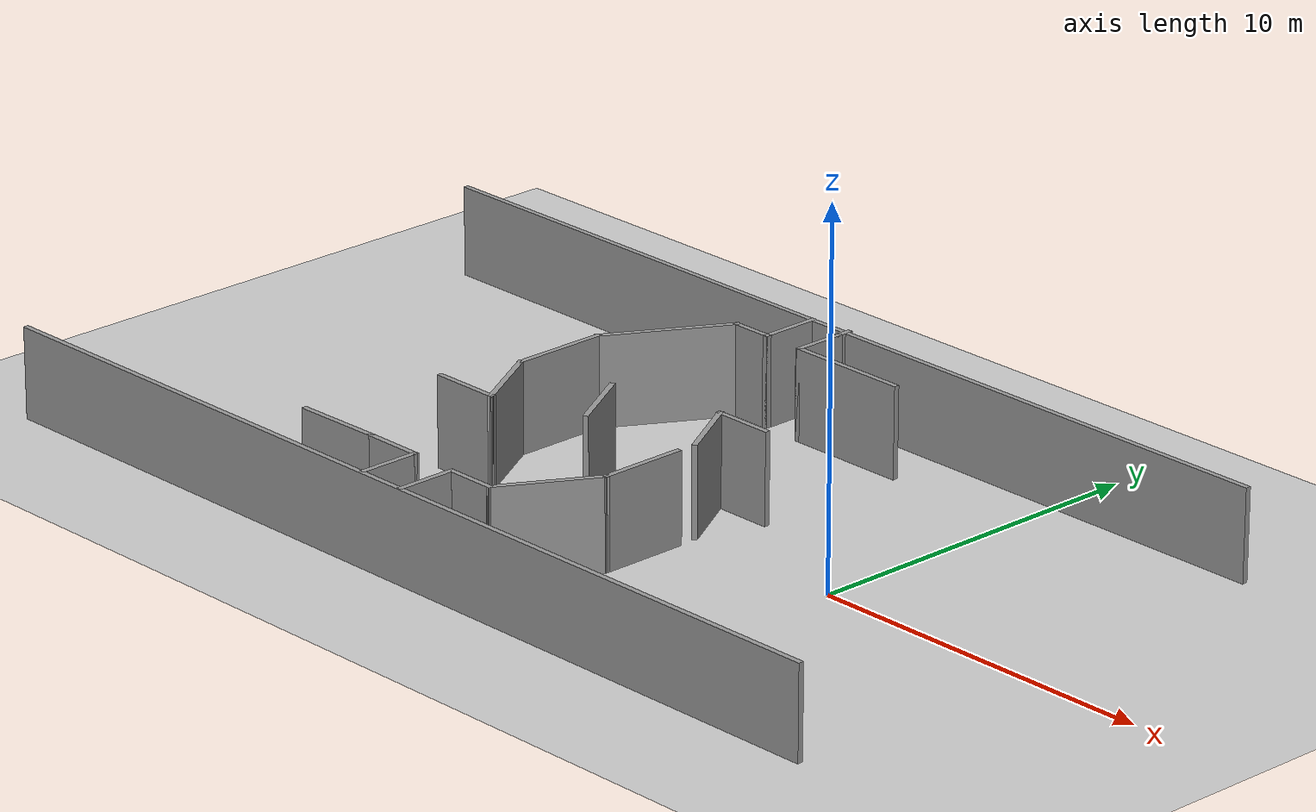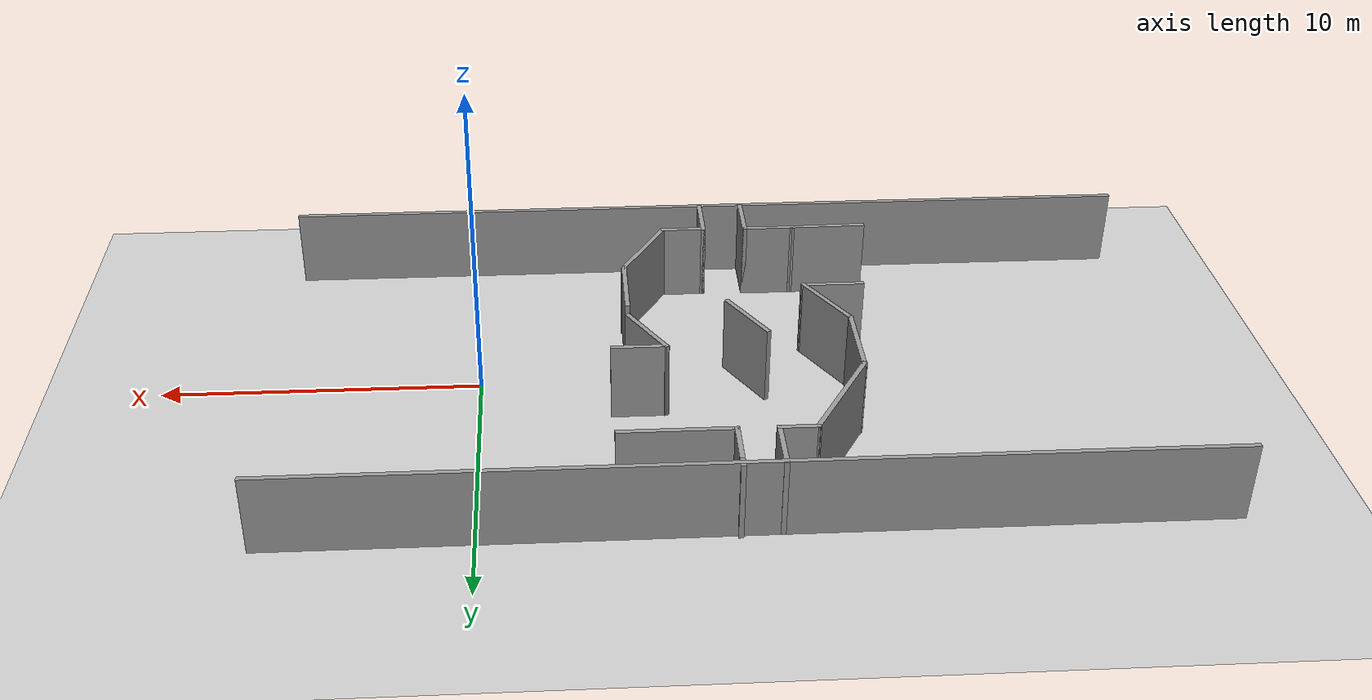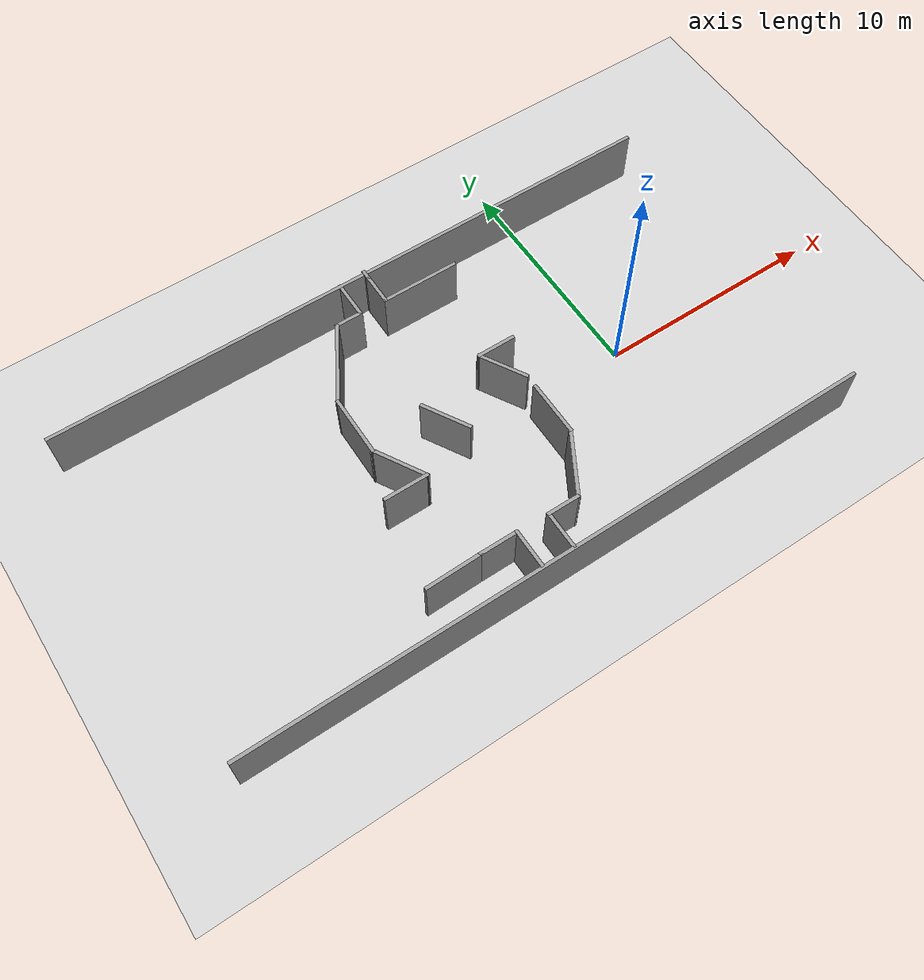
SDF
<sdf version="1.7">
 <world name="default">
  <model name="ground_plane">
   <static>1</static>
   <link name="link">
    <collision name="collision">
     <geometry><plane><normal>0 0 1</normal><size>100 100</size></plane></geometry>
     <surface>
      <contact><collide_bitmask>65535</collide_bitmask></contact>
      <friction><ode><mu>100</mu><mu2>50</mu2></ode></friction>
     </surface>
    </collision>
    <visual name="visual">
     <cast_shadows>0</cast_shadows>
     <geometry><plane><normal>0 0 1</normal><size>100 100</size></plane></geometry>
     <material>
      <script><uri>file://media/materials/scripts/gazebo.material</uri><name>Gazebo/Grey</name></script>
     </material>
    </visual>
   </link>
  </model>
  <model name="cubot">
   <link name="Wall_122">
    <pose>0 7.37532 0 0 -0 0</pose>
    <visual name="Wall_122_Visual">
     <pose>0 0 1.25 0 -0 0</pose>
     <geometry><box><size>28 0.15 2.5</size></box></geometry>
     <material>
      <script><uri>file://media/materials/scripts/gazebo.material</uri><name>Gazebo/Grey</name></script>
      <ambient>1 1 1 1</ambient>
      <shader type="pixel"/>
     </material>
     <meta><layer>0</layer></meta>
    </visual>
    <collision name="Wall_122_Collision">
     <pose>0 0 1.25 0 -0 0</pose>
     <geometry><box><size>28 0.15 2.5</size></box></geometry>
     <surface>
      <friction>
       <ode><mu>1</mu><mu2>1</mu2><fdir1>0 0 0</fdir1><slip1>0</slip1><slip2>0</slip2></ode>
       <torsional>
        <coefficient>1</coefficient>
        <patch_radius>0</patch_radius>
        <surface_radius>0</surface_radius>
        <use_patch_radius>1</use_patch_radius>
        <ode><slip>0</slip></ode>
       </torsional>
      </friction>
      <bounce><restitution_coefficient>0</restitution_coefficient><threshold>1e+06</threshold></bounce>
      <contact>
       <collide_without_contact>0</collide_without_contact>
       <collide_without_contact_bitmask>1</collide_without_contact_bitmask>
       <collide_bitmask>1</collide_bitmask>
       <ode>
        <soft_cfm>0</soft_cfm>
        <soft_erp>0.2</soft_erp>
        <kp>1e+13</kp>
        <kd>1</kd>
        <max_vel>0.01</max_vel>
        <min_depth>0</min_depth>
       </ode>
       <bullet>
        <split_impulse>1</split_impulse>
        <split_impulse_penetration_threshold>-0.01</split_impulse_penetration_threshold>
        <soft_cfm>0</soft_cfm>
        <soft_erp>0.2</soft_erp>
        <kp>1e+13</kp>
        <kd>1</kd>
       </bullet>
      </contact>
     </surface>
    </collision>
   </link>
   <link name="Wall_124">
    <pose>0 -7.47468 0 0 -0 3.14159</pose>
    <visual name="Wall_124_Visual">
     <pose>0 0 1.25 0 -0 0</pose>
     <geometry><box><size>28 0.15 2.5</size></box></geometry>
     <material>
      <script><uri>file://media/materials/scripts/gazebo.material</uri><name>Gazebo/Grey</name></script>
      <ambient>1 1 1 1</ambient>
      <shader type="pixel"/>
     </material>
     <meta><layer>0</layer></meta>
    </visual>
    <collision name="Wall_124_Collision">
     <pose>0 0 1.25 0 -0 0</pose>
     <geometry><box><size>28 0.15 2.5</size></box></geometry>
     <surface>
      <friction>
       <ode><mu>1</mu><mu2>1</mu2><fdir1>0 0 0</fdir1><slip1>0</slip1><slip2>0</slip2></ode>
       <torsional>
        <coefficient>1</coefficient>
        <patch_radius>0</patch_radius>
        <surface_radius>0</surface_radius>
        <use_patch_radius>1</use_patch_radius>
        <ode><slip>0</slip></ode>
       </torsional>
      </friction>
      <bounce><restitution_coefficient>0</restitution_coefficient><threshold>1e+06</threshold></bounce>
      <contact>
       <collide_without_contact>0</collide_without_contact>
       <collide_without_contact_bitmask>1</collide_without_contact_bitmask>
       <collide_bitmask>1</collide_bitmask>
       <ode>
        <soft_cfm>0</soft_cfm>
        <soft_erp>0.2</soft_erp>
        <kp>1e+13</kp>
        <kd>1</kd>
        <max_vel>0.01</max_vel>
        <min_depth>0</min_depth>
       </ode>
       <bullet>
        <split_impulse>1</split_impulse>
        <split_impulse_penetration_threshold>-0.01</split_impulse_penetration_threshold>
        <soft_cfm>0</soft_cfm>
        <soft_erp>0.2</soft_erp>
        <kp>1e+13</kp>
        <kd>1</kd>
       </bullet>
      </contact>
     </surface>
    </collision>
   </link>
   <link name="Wall_135">
    <pose>-3.50308 -1.96538 0 0 -0 0</pose>
    <visual name="Wall_135_Visual">
     <pose>0 0 1.25 0 -0 0</pose>
     <geometry><box><size>2 0.15 2.5</size></box></geometry>
     <material>
      <script><uri>file://media/materials/scripts/gazebo.material</uri><name>Gazebo/Grey</name></script>
      <ambient>1 1 1 1</ambient>
      <shader type="pixel"/>
     </material>
     <meta><layer>0</layer></meta>
    </visual>
    <collision name="Wall_135_Collision">
     <pose>0 0 1.25 0 -0 0</pose>
     <geometry><box><size>2 0.15 2.5</size></box></geometry>
     <surface>
      <friction>
       <ode><mu>1</mu><mu2>1</mu2><fdir1>0 0 0</fdir1><slip1>0</slip1><slip2>0</slip2></ode>
       <torsional>
        <coefficient>1</coefficient>
        <patch_radius>0</patch_radius>
        <surface_radius>0</surface_radius>
        <use_patch_radius>1</use_patch_radius>
        <ode><slip>0</slip></ode>
       </torsional>
      </friction>
      <bounce><restitution_coefficient>0</restitution_coefficient><threshold>1e+06</threshold></bounce>
      <contact>
       <collide_without_contact>0</collide_without_contact>
       <collide_without_contact_bitmask>1</collide_without_contact_bitmask>
       <collide_bitmask>1</collide_bitmask>
       <ode>
        <soft_cfm>0</soft_cfm>
        <soft_erp>0.2</soft_erp>
        <kp>1e+13</kp>
        <kd>1</kd>
        <max_vel>0.01</max_vel>
        <min_depth>0</min_depth>
       </ode>
       <bullet>
        <split_impulse>1</split_impulse>
        <split_impulse_penetration_threshold>-0.01</split_impulse_penetration_threshold>
        <soft_cfm>0</soft_cfm>
        <soft_erp>0.2</soft_erp>
        <kp>1e+13</kp>
        <kd>1</kd>
       </bullet>
      </contact>
     </surface>
    </collision>
   </link>
   <link name="Wall_136">
    <pose>-3.16558 -0.947797 0 0 -0 2.0944</pose>
    <visual name="Wall_136_Visual">
     <pose>0 0 1.25 0 -0 0</pose>
     <geometry><box><size>2.5 0.15 2.5</size></box></geometry>
     <material>
      <script><uri>file://media/materials/scripts/gazebo.material</uri><name>Gazebo/Grey</name></script>
      <ambient>1 1 1 1</ambient>
      <shader type="pixel"/>
     </material>
     <meta><layer>0</layer></meta>
    </visual>
    <collision name="Wall_136_Collision">
     <pose>0 0 1.25 0 -0 0</pose>
     <geometry><box><size>2.5 0.15 2.5</size></box></geometry>
     <surface>
      <friction>
       <ode><mu>1</mu><mu2>1</mu2><fdir1>0 0 0</fdir1><slip1>0</slip1><slip2>0</slip2></ode>
       <torsional>
        <coefficient>1</coefficient>
        <patch_radius>0</patch_radius>
        <surface_radius>0</surface_radius>
        <use_patch_radius>1</use_patch_radius>
        <ode><slip>0</slip></ode>
       </torsional>
      </friction>
      <bounce><restitution_coefficient>0</restitution_coefficient><threshold>1e+06</threshold></bounce>
      <contact>
       <collide_without_contact>0</collide_without_contact>
       <collide_without_contact_bitmask>1</collide_without_contact_bitmask>
       <collide_bitmask>1</collide_bitmask>
       <ode>
        <soft_cfm>0</soft_cfm>
        <soft_erp>0.2</soft_erp>
        <kp>1e+13</kp>
        <kd>1</kd>
        <max_vel>0.01</max_vel>
        <min_depth>0</min_depth>
       </ode>
       <bullet>
        <split_impulse>1</split_impulse>
        <split_impulse_penetration_threshold>-0.01</split_impulse_penetration_threshold>
        <soft_cfm>0</soft_cfm>
        <soft_erp>0.2</soft_erp>
        <kp>1e+13</kp>
        <kd>1</kd>
       </bullet>
      </contact>
     </surface>
    </collision>
   </link>
   <link name="Wall_137">
    <pose>-3.75308 1.36978 0 0 -0 1.5708</pose>
    <visual name="Wall_137_Visual">
     <pose>0 0 1.25 0 -0 0</pose>
     <geometry><box><size>2.75 0.15 2.5</size></box></geometry>
     <material>
      <script><uri>file://media/materials/scripts/gazebo.material</uri><name>Gazebo/Grey</name></script>
      <ambient>1 1 1 1</ambient>
      <shader type="pixel"/>
     </material>
     <meta><layer>0</layer></meta>
    </visual>
    <collision name="Wall_137_Collision">
     <pose>0 0 1.25 0 -0 0</pose>
     <geometry><box><size>2.75 0.15 2.5</size></box></geometry>
     <surface>
      <friction>
       <ode><mu>1</mu><mu2>1</mu2><fdir1>0 0 0</fdir1><slip1>0</slip1><slip2>0</slip2></ode>
       <torsional>
        <coefficient>1</coefficient>
        <patch_radius>0</patch_radius>
        <surface_radius>0</surface_radius>
        <use_patch_radius>1</use_patch_radius>
        <ode><slip>0</slip></ode>
       </torsional>
      </friction>
      <bounce><restitution_coefficient>0</restitution_coefficient><threshold>1e+06</threshold></bounce>
      <contact>
       <collide_without_contact>0</collide_without_contact>
       <collide_without_contact_bitmask>1</collide_without_contact_bitmask>
       <collide_bitmask>1</collide_bitmask>
       <ode>
        <soft_cfm>0</soft_cfm>
        <soft_erp>0.2</soft_erp>
        <kp>1e+13</kp>
        <kd>1</kd>
        <max_vel>0.01</max_vel>
        <min_depth>0</min_depth>
       </ode>
       <bullet>
        <split_impulse>1</split_impulse>
        <split_impulse_penetration_threshold>-0.01</split_impulse_penetration_threshold>
        <soft_cfm>0</soft_cfm>
        <soft_erp>0.2</soft_erp>
        <kp>1e+13</kp>
        <kd>1</kd>
       </bullet>
      </contact>
     </surface>
    </collision>
   </link>
   <link name="Wall_138">
    <pose>-2.85308 4.22863 0 0 -0 1.0472</pose>
    <visual name="Wall_138_Visual">
     <pose>0 0 1.25 0 -0 0</pose>
     <geometry><box><size>3.75 0.15 2.5</size></box></geometry>
     <material>
      <script><uri>file://media/materials/scripts/gazebo.material</uri><name>Gazebo/Grey</name></script>
      <ambient>1 1 1 1</ambient>
      <shader type="pixel"/>
     </material>
     <meta><layer>0</layer></meta>
    </visual>
    <collision name="Wall_138_Collision">
     <pose>0 0 1.25 0 -0 0</pose>
     <geometry><box><size>3.75 0.15 2.5</size></box></geometry>
     <surface>
      <friction>
       <ode><mu>1</mu><mu2>1</mu2><fdir1>0 0 0</fdir1><slip1>0</slip1><slip2>0</slip2></ode>
       <torsional>
        <coefficient>1</coefficient>
        <patch_radius>0</patch_radius>
        <surface_radius>0</surface_radius>
        <use_patch_radius>1</use_patch_radius>
        <ode><slip>0</slip></ode>
       </torsional>
      </friction>
      <bounce><restitution_coefficient>0</restitution_coefficient><threshold>1e+06</threshold></bounce>
      <contact>
       <collide_without_contact>0</collide_without_contact>
       <collide_without_contact_bitmask>1</collide_without_contact_bitmask>
       <collide_bitmask>1</collide_bitmask>
       <ode>
        <soft_cfm>0</soft_cfm>
        <soft_erp>0.2</soft_erp>
        <kp>1e+13</kp>
        <kd>1</kd>
        <max_vel>0.01</max_vel>
        <min_depth>0</min_depth>
       </ode>
       <bullet>
        <split_impulse>1</split_impulse>
        <split_impulse_penetration_threshold>-0.01</split_impulse_penetration_threshold>
        <soft_cfm>0</soft_cfm>
        <soft_erp>0.2</soft_erp>
        <kp>1e+13</kp>
        <kd>1</kd>
       </bullet>
      </contact>
     </surface>
    </collision>
   </link>
   <link name="Wall_139">
    <pose>-1.40308 5.78747 0 0 -0 0</pose>
    <visual name="Wall_139_Visual">
     <pose>0 0 1.25 0 -0 0</pose>
     <geometry><box><size>1.25 0.15 2.5</size></box></geometry>
     <material>
      <script><uri>file://media/materials/scripts/gazebo.material</uri><name>Gazebo/Grey</name></script>
      <ambient>1 1 1 1</ambient>
      <shader type="pixel"/>
     </material>
     <meta><layer>0</layer></meta>
    </visual>
    <collision name="Wall_139_Collision">
     <pose>0 0 1.25 0 -0 0</pose>
     <geometry><box><size>1.25 0.15 2.5</size></box></geometry>
     <surface>
      <friction>
       <ode><mu>1</mu><mu2>1</mu2><fdir1>0 0 0</fdir1><slip1>0</slip1><slip2>0</slip2></ode>
       <torsional>
        <coefficient>1</coefficient>
        <patch_radius>0</patch_radius>
        <surface_radius>0</surface_radius>
        <use_patch_radius>1</use_patch_radius>
        <ode><slip>0</slip></ode>
       </torsional>
      </friction>
      <bounce><restitution_coefficient>0</restitution_coefficient><threshold>1e+06</threshold></bounce>
      <contact>
       <collide_without_contact>0</collide_without_contact>
       <collide_without_contact_bitmask>1</collide_without_contact_bitmask>
       <collide_bitmask>1</collide_bitmask>
       <ode>
        <soft_cfm>0</soft_cfm>
        <soft_erp>0.2</soft_erp>
        <kp>1e+13</kp>
        <kd>1</kd>
        <max_vel>0.01</max_vel>
        <min_depth>0</min_depth>
       </ode>
       <bullet>
        <split_impulse>1</split_impulse>
        <split_impulse_penetration_threshold>-0.01</split_impulse_penetration_threshold>
        <soft_cfm>0</soft_cfm>
        <soft_erp>0.2</soft_erp>
        <kp>1e+13</kp>
        <kd>1</kd>
       </bullet>
      </contact>
     </surface>
    </collision>
   </link>
   <link name="Wall_140">
    <pose>-0.853083 6.58747 0 0 -0 1.5708</pose>
    <visual name="Wall_140_Visual">
     <pose>0 0 1.25 0 -0 0</pose>
     <geometry><box><size>1.75 0.15 2.5</size></box></geometry>
     <material>
      <script><uri>file://media/materials/scripts/gazebo.material</uri><name>Gazebo/Grey</name></script>
      <ambient>1 1 1 1</ambient>
      <shader type="pixel"/>
     </material>
     <meta><layer>0</layer></meta>
    </visual>
    <collision name="Wall_140_Collision">
     <pose>0 0 1.25 0 -0 0</pose>
     <geometry><box><size>1.75 0.15 2.5</size></box></geometry>
     <surface>
      <friction>
       <ode><mu>1</mu><mu2>1</mu2><fdir1>0 0 0</fdir1><slip1>0</slip1><slip2>0</slip2></ode>
       <torsional>
        <coefficient>1</coefficient>
        <patch_radius>0</patch_radius>
        <surface_radius>0</surface_radius>
        <use_patch_radius>1</use_patch_radius>
        <ode><slip>0</slip></ode>
       </torsional>
      </friction>
      <bounce><restitution_coefficient>0</restitution_coefficient><threshold>1e+06</threshold></bounce>
      <contact>
       <collide_without_contact>0</collide_without_contact>
       <collide_without_contact_bitmask>1</collide_without_contact_bitmask>
       <collide_bitmask>1</collide_bitmask>
       <ode>
        <soft_cfm>0</soft_cfm>
        <soft_erp>0.2</soft_erp>
        <kp>1e+13</kp>
        <kd>1</kd>
        <max_vel>0.01</max_vel>
        <min_depth>0</min_depth>
       </ode>
       <bullet>
        <split_impulse>1</split_impulse>
        <split_impulse_penetration_threshold>-0.01</split_impulse_penetration_threshold>
        <soft_cfm>0</soft_cfm>
        <soft_erp>0.2</soft_erp>
        <kp>1e+13</kp>
        <kd>1</kd>
       </bullet>
      </contact>
     </surface>
    </collision>
   </link>
   <link name="Wall_148">
    <pose>-1.8855 -5.78249 0 0 -0 0</pose>
    <visual name="Wall_148_Visual">
     <pose>0 0 1.25 0 -0 0</pose>
     <geometry><box><size>1.75 0.15 2.5</size></box></geometry>
     <material>
      <script><uri>file://media/materials/scripts/gazebo.material</uri><name>Gazebo/Grey</name></script>
      <ambient>1 1 1 1</ambient>
      <shader type="pixel"/>
     </material>
     <meta><layer>0</layer></meta>
    </visual>
    <collision name="Wall_148_Collision">
     <pose>0 0 1.25 0 -0 0</pose>
     <geometry><box><size>1.75 0.15 2.5</size></box></geometry>
     <surface>
      <friction>
       <ode><mu>1</mu><mu2>1</mu2><fdir1>0 0 0</fdir1><slip1>0</slip1><slip2>0</slip2></ode>
       <torsional>
        <coefficient>1</coefficient>
        <patch_radius>0</patch_radius>
        <surface_radius>0</surface_radius>
        <use_patch_radius>1</use_patch_radius>
        <ode><slip>0</slip></ode>
       </torsional>
      </friction>
      <bounce><restitution_coefficient>0</restitution_coefficient><threshold>1e+06</threshold></bounce>
      <contact>
       <collide_without_contact>0</collide_without_contact>
       <collide_without_contact_bitmask>1</collide_without_contact_bitmask>
       <collide_bitmask>1</collide_bitmask>
       <ode>
        <soft_cfm>0</soft_cfm>
        <soft_erp>0.2</soft_erp>
        <kp>1e+13</kp>
        <kd>1</kd>
        <max_vel>0.01</max_vel>
        <min_depth>0</min_depth>
       </ode>
       <bullet>
        <split_impulse>1</split_impulse>
        <split_impulse_penetration_threshold>-0.01</split_impulse_penetration_threshold>
        <soft_cfm>0</soft_cfm>
        <soft_erp>0.2</soft_erp>
        <kp>1e+13</kp>
        <kd>1</kd>
       </bullet>
      </contact>
     </surface>
    </collision>
   </link>
   <link name="Wall_149">
    <pose>-1.0855 -6.58249 0 0 0 -1.5708</pose>
    <visual name="Wall_149_Visual">
     <pose>0 0 1.25 0 -0 0</pose>
     <geometry><box><size>1.75 0.15 2.5</size></box></geometry>
     <material>
      <script><uri>file://media/materials/scripts/gazebo.material</uri><name>Gazebo/Grey</name></script>
      <ambient>1 1 1 1</ambient>
      <shader type="pixel"/>
     </material>
     <meta><layer>0</layer></meta>
    </visual>
    <collision name="Wall_149_Collision">
     <pose>0 0 1.25 0 -0 0</pose>
     <geometry><box><size>1.75 0.15 2.5</size></box></geometry>
     <surface>
      <friction>
       <ode><mu>1</mu><mu2>1</mu2><fdir1>0 0 0</fdir1><slip1>0</slip1><slip2>0</slip2></ode>
       <torsional>
        <coefficient>1</coefficient>
        <patch_radius>0</patch_radius>
        <surface_radius>0</surface_radius>
        <use_patch_radius>1</use_patch_radius>
        <ode><slip>0</slip></ode>
       </torsional>
      </friction>
      <bounce><restitution_coefficient>0</restitution_coefficient><threshold>1e+06</threshold></bounce>
      <contact>
       <collide_without_contact>0</collide_without_contact>
       <collide_without_contact_bitmask>1</collide_without_contact_bitmask>
       <collide_bitmask>1</collide_bitmask>
       <ode>
        <soft_cfm>0</soft_cfm>
        <soft_erp>0.2</soft_erp>
        <kp>1e+13</kp>
        <kd>1</kd>
        <max_vel>0.01</max_vel>
        <min_depth>0</min_depth>
       </ode>
       <bullet>
        <split_impulse>1</split_impulse>
        <split_impulse_penetration_threshold>-0.01</split_impulse_penetration_threshold>
        <soft_cfm>0</soft_cfm>
        <soft_erp>0.2</soft_erp>
        <kp>1e+13</kp>
        <kd>1</kd>
       </bullet>
      </contact>
     </surface>
    </collision>
   </link>
   <link name="Wall_154">
    <pose>-3.87344 -5.80579 0 0 -0 0.019608</pose>
    <visual name="Wall_154_Visual">
     <pose>0 0 1.25 0 -0 0</pose>
     <geometry><box><size>2.52634 0.15 2.5</size></box></geometry>
     <material>
      <script><uri>file://media/materials/scripts/gazebo.material</uri><name>Gazebo/Grey</name></script>
      <ambient>1 1 1 1</ambient>
      <shader type="pixel"/>
     </material>
     <meta><layer>0</layer></meta>
    </visual>
    <collision name="Wall_154_Collision">
     <pose>0 0 1.25 0 -0 0</pose>
     <geometry><box><size>2.52634 0.15 2.5</size></box></geometry>
     <surface>
      <friction>
       <ode><mu>1</mu><mu2>1</mu2><fdir1>0 0 0</fdir1><slip1>0</slip1><slip2>0</slip2></ode>
       <torsional>
        <coefficient>1</coefficient>
        <patch_radius>0</patch_radius>
        <surface_radius>0</surface_radius>
        <use_patch_radius>1</use_patch_radius>
        <ode><slip>0</slip></ode>
       </torsional>
      </friction>
      <bounce><restitution_coefficient>0</restitution_coefficient><threshold>1e+06</threshold></bounce>
      <contact>
       <collide_without_contact>0</collide_without_contact>
       <collide_without_contact_bitmask>1</collide_without_contact_bitmask>
       <collide_bitmask>1</collide_bitmask>
       <ode>
        <soft_cfm>0</soft_cfm>
        <soft_erp>0.2</soft_erp>
        <kp>1e+13</kp>
        <kd>1</kd>
        <max_vel>0.01</max_vel>
        <min_depth>0</min_depth>
       </ode>
       <bullet>
        <split_impulse>1</split_impulse>
        <split_impulse_penetration_threshold>-0.01</split_impulse_penetration_threshold>
        <soft_cfm>0</soft_cfm>
        <soft_erp>0.2</soft_erp>
        <kp>1e+13</kp>
        <kd>1</kd>
       </bullet>
      </contact>
     </surface>
    </collision>
   </link>
   <link name="Wall_155">
    <pose>0.339347 6.44968 0 0 -0 1.5708</pose>
    <visual name="Wall_155_Visual">
     <pose>0 0 1.25 0 -0 0</pose>
     <geometry><box><size>1.5 0.15 2.5</size></box></geometry>
     <material>
      <script><uri>file://media/materials/scripts/gazebo.material</uri><name>Gazebo/Grey</name></script>
      <ambient>1 1 1 1</ambient>
      <shader type="pixel"/>
     </material>
     <meta><layer>0</layer></meta>
    </visual>
    <collision name="Wall_155_Collision">
     <pose>0 0 1.25 0 -0 0</pose>
     <geometry><box><size>1.5 0.15 2.5</size></box></geometry>
     <surface>
      <friction>
       <ode><mu>1</mu><mu2>1</mu2><fdir1>0 0 0</fdir1><slip1>0</slip1><slip2>0</slip2></ode>
       <torsional>
        <coefficient>1</coefficient>
        <patch_radius>0</patch_radius>
        <surface_radius>0</surface_radius>
        <use_patch_radius>1</use_patch_radius>
        <ode><slip>0</slip></ode>
       </torsional>
      </friction>
      <bounce><restitution_coefficient>0</restitution_coefficient><threshold>1e+06</threshold></bounce>
      <contact>
       <collide_without_contact>0</collide_without_contact>
       <collide_without_contact_bitmask>1</collide_without_contact_bitmask>
       <collide_bitmask>1</collide_bitmask>
       <ode>
        <soft_cfm>0</soft_cfm>
        <soft_erp>0.2</soft_erp>
        <kp>1e+13</kp>
        <kd>1</kd>
        <max_vel>0.01</max_vel>
        <min_depth>0</min_depth>
       </ode>
       <bullet>
        <split_impulse>1</split_impulse>
        <split_impulse_penetration_threshold>-0.01</split_impulse_penetration_threshold>
        <soft_cfm>0</soft_cfm>
        <soft_erp>0.2</soft_erp>
        <kp>1e+13</kp>
        <kd>1</kd>
       </bullet>
      </contact>
     </surface>
    </collision>
   </link>
   <link name="Wall_156">
    <pose>0.339347 7.29968 0 0 -0 1.5708</pose>
    <visual name="Wall_156_Visual">
     <pose>0 0 1.25 0 -0 0</pose>
     <geometry><box><size>0.5 0.15 2.5</size></box></geometry>
     <material>
      <script><uri>file://media/materials/scripts/gazebo.material</uri><name>Gazebo/Grey</name></script>
      <ambient>1 1 1 1</ambient>
      <shader type="pixel"/>
     </material>
     <meta><layer>0</layer></meta>
    </visual>
    <collision name="Wall_156_Collision">
     <pose>0 0 1.25 0 -0 0</pose>
     <geometry><box><size>0.5 0.15 2.5</size></box></geometry>
     <surface>
      <friction>
       <ode><mu>1</mu><mu2>1</mu2><fdir1>0 0 0</fdir1><slip1>0</slip1><slip2>0</slip2></ode>
       <torsional>
        <coefficient>1</coefficient>
        <patch_radius>0</patch_radius>
        <surface_radius>0</surface_radius>
        <use_patch_radius>1</use_patch_radius>
        <ode><slip>0</slip></ode>
       </torsional>
      </friction>
      <bounce><restitution_coefficient>0</restitution_coefficient><threshold>1e+06</threshold></bounce>
      <contact>
       <collide_without_contact>0</collide_without_contact>
       <collide_without_contact_bitmask>1</collide_without_contact_bitmask>
       <collide_bitmask>1</collide_bitmask>
       <ode>
        <soft_cfm>0</soft_cfm>
        <soft_erp>0.2</soft_erp>
        <kp>1e+13</kp>
        <kd>1</kd>
        <max_vel>0.01</max_vel>
        <min_depth>0</min_depth>
       </ode>
       <bullet>
        <split_impulse>1</split_impulse>
        <split_impulse_penetration_threshold>-0.01</split_impulse_penetration_threshold>
        <soft_cfm>0</soft_cfm>
        <soft_erp>0.2</soft_erp>
        <kp>1e+13</kp>
        <kd>1</kd>
       </bullet>
      </contact>
     </surface>
    </collision>
   </link>
   <link name="Wall_157">
    <pose>2.01435 5.77468 0 0 -0 0</pose>
    <visual name="Wall_157_Visual">
     <pose>0 0 1.25 0 -0 0</pose>
     <geometry><box><size>3.5 0.15 2.5</size></box></geometry>
     <material>
      <script><uri>file://media/materials/scripts/gazebo.material</uri><name>Gazebo/Grey</name></script>
      <ambient>1 1 1 1</ambient>
      <shader type="pixel"/>
     </material>
     <meta><layer>0</layer></meta>
    </visual>
    <collision name="Wall_157_Collision">
     <pose>0 0 1.25 0 -0 0</pose>
     <geometry><box><size>3.5 0.15 2.5</size></box></geometry>
     <surface>
      <friction>
       <ode><mu>1</mu><mu2>1</mu2><fdir1>0 0 0</fdir1><slip1>0</slip1><slip2>0</slip2></ode>
       <torsional>
        <coefficient>1</coefficient>
        <patch_radius>0</patch_radius>
        <surface_radius>0</surface_radius>
        <use_patch_radius>1</use_patch_radius>
        <ode><slip>0</slip></ode>
       </torsional>
      </friction>
      <bounce><restitution_coefficient>0</restitution_coefficient><threshold>1e+06</threshold></bounce>
      <contact>
       <collide_without_contact>0</collide_without_contact>
       <collide_without_contact_bitmask>1</collide_without_contact_bitmask>
       <collide_bitmask>1</collide_bitmask>
       <ode>
        <soft_cfm>0</soft_cfm>
        <soft_erp>0.2</soft_erp>
        <kp>1e+13</kp>
        <kd>1</kd>
        <max_vel>0.01</max_vel>
        <min_depth>0</min_depth>
       </ode>
       <bullet>
        <split_impulse>1</split_impulse>
        <split_impulse_penetration_threshold>-0.01</split_impulse_penetration_threshold>
        <soft_cfm>0</soft_cfm>
        <soft_erp>0.2</soft_erp>
        <kp>1e+13</kp>
        <kd>1</kd>
       </bullet>
      </contact>
     </surface>
    </collision>
   </link>
   <link name="Wall_165">
    <pose>0.316133 -6.63443 0 0 -0 1.5708</pose>
    <visual name="Wall_165_Visual">
     <pose>0 0 1.25 0 -0 0</pose>
     <geometry><box><size>1.75 0.15 2.5</size></box></geometry>
     <material>
      <script><uri>file://media/materials/scripts/gazebo.material</uri><name>Gazebo/Grey</name></script>
      <ambient>1 1 1 1</ambient>
      <shader type="pixel"/>
     </material>
     <meta><layer>0</layer></meta>
    </visual>
    <collision name="Wall_165_Collision">
     <pose>0 0 1.25 0 -0 0</pose>
     <geometry><box><size>1.75 0.15 2.5</size></box></geometry>
     <surface>
      <friction>
       <ode><mu>1</mu><mu2>1</mu2><fdir1>0 0 0</fdir1><slip1>0</slip1><slip2>0</slip2></ode>
       <torsional>
        <coefficient>1</coefficient>
        <patch_radius>0</patch_radius>
        <surface_radius>0</surface_radius>
        <use_patch_radius>1</use_patch_radius>
        <ode><slip>0</slip></ode>
       </torsional>
      </friction>
      <bounce><restitution_coefficient>0</restitution_coefficient><threshold>1e+06</threshold></bounce>
      <contact>
       <collide_without_contact>0</collide_without_contact>
       <collide_without_contact_bitmask>1</collide_without_contact_bitmask>
       <collide_bitmask>1</collide_bitmask>
       <ode>
        <soft_cfm>0</soft_cfm>
        <soft_erp>0.2</soft_erp>
        <kp>1e+13</kp>
        <kd>1</kd>
        <max_vel>0.01</max_vel>
        <min_depth>0</min_depth>
       </ode>
       <bullet>
        <split_impulse>1</split_impulse>
        <split_impulse_penetration_threshold>-0.01</split_impulse_penetration_threshold>
        <soft_cfm>0</soft_cfm>
        <soft_erp>0.2</soft_erp>
        <kp>1e+13</kp>
        <kd>1</kd>
       </bullet>
      </contact>
     </surface>
    </collision>
   </link>
   <link name="Wall_166">
    <pose>0.991133 -5.83443 0 0 -0 0</pose>
    <visual name="Wall_166_Visual">
     <pose>0 0 1.25 0 -0 0</pose>
     <geometry><box><size>1.5 0.15 2.5</size></box></geometry>
     <material>
      <script><uri>file://media/materials/scripts/gazebo.material</uri><name>Gazebo/Grey</name></script>
      <ambient>1 1 1 1</ambient>
      <shader type="pixel"/>
     </material>
     <meta><layer>0</layer></meta>
    </visual>
    <collision name="Wall_166_Collision">
     <pose>0 0 1.25 0 -0 0</pose>
     <geometry><box><size>1.5 0.15 2.5</size></box></geometry>
     <surface>
      <friction>
       <ode><mu>1</mu><mu2>1</mu2><fdir1>0 0 0</fdir1><slip1>0</slip1><slip2>0</slip2></ode>
       <torsional>
        <coefficient>1</coefficient>
        <patch_radius>0</patch_radius>
        <surface_radius>0</surface_radius>
        <use_patch_radius>1</use_patch_radius>
        <ode><slip>0</slip></ode>
       </torsional>
      </friction>
      <bounce><restitution_coefficient>0</restitution_coefficient><threshold>1e+06</threshold></bounce>
      <contact>
       <collide_without_contact>0</collide_without_contact>
       <collide_without_contact_bitmask>1</collide_without_contact_bitmask>
       <collide_bitmask>1</collide_bitmask>
       <ode>
        <soft_cfm>0</soft_cfm>
        <soft_erp>0.2</soft_erp>
        <kp>1e+13</kp>
        <kd>1</kd>
        <max_vel>0.01</max_vel>
        <min_depth>0</min_depth>
       </ode>
       <bullet>
        <split_impulse>1</split_impulse>
        <split_impulse_penetration_threshold>-0.01</split_impulse_penetration_threshold>
        <soft_cfm>0</soft_cfm>
        <soft_erp>0.2</soft_erp>
        <kp>1e+13</kp>
        <kd>1</kd>
       </bullet>
      </contact>
     </surface>
    </collision>
   </link>
   <link name="Wall_169">
    <pose>2.37863 -4.60034 0 0 -0 1.0472</pose>
    <visual name="Wall_169_Visual">
     <pose>0 0 1.25 0 -0 0</pose>
     <geometry><box><size>3 0.15 2.5</size></box></geometry>
     <material>
      <script><uri>file://media/materials/scripts/gazebo.material</uri><name>Gazebo/Grey</name></script>
      <ambient>1 1 1 1</ambient>
      <shader type="pixel"/>
     </material>
     <meta><layer>0</layer></meta>
    </visual>
    <collision name="Wall_169_Collision">
     <pose>0 0 1.25 0 -0 0</pose>
     <geometry><box><size>3 0.15 2.5</size></box></geometry>
     <surface>
      <friction>
       <ode><mu>1</mu><mu2>1</mu2><fdir1>0 0 0</fdir1><slip1>0</slip1><slip2>0</slip2></ode>
       <torsional>
        <coefficient>1</coefficient>
        <patch_radius>0</patch_radius>
        <surface_radius>0</surface_radius>
        <use_patch_radius>1</use_patch_radius>
        <ode><slip>0</slip></ode>
       </torsional>
      </friction>
      <bounce><restitution_coefficient>0</restitution_coefficient><threshold>1e+06</threshold></bounce>
      <contact>
       <collide_without_contact>0</collide_without_contact>
       <collide_without_contact_bitmask>1</collide_without_contact_bitmask>
       <collide_bitmask>1</collide_bitmask>
       <ode>
        <soft_cfm>0</soft_cfm>
        <soft_erp>0.2</soft_erp>
        <kp>1e+13</kp>
        <kd>1</kd>
        <max_vel>0.01</max_vel>
        <min_depth>0</min_depth>
       </ode>
       <bullet>
        <split_impulse>1</split_impulse>
        <split_impulse_penetration_threshold>-0.01</split_impulse_penetration_threshold>
        <soft_cfm>0</soft_cfm>
        <soft_erp>0.2</soft_erp>
        <kp>1e+13</kp>
        <kd>1</kd>
       </bullet>
      </contact>
     </surface>
    </collision>
   </link>
   <link name="Wall_170">
    <pose>3.09113 -2.19126 0 0 -0 1.5708</pose>
    <visual name="Wall_170_Visual">
     <pose>0 0 1.25 0 -0 0</pose>
     <geometry><box><size>2.5 0.15 2.5</size></box></geometry>
     <material>
      <script><uri>file://media/materials/scripts/gazebo.material</uri><name>Gazebo/Grey</name></script>
      <ambient>1 1 1 1</ambient>
      <shader type="pixel"/>
     </material>
     <meta><layer>0</layer></meta>
    </visual>
    <collision name="Wall_170_Collision">
     <pose>0 0 1.25 0 -0 0</pose>
     <geometry><box><size>2.5 0.15 2.5</size></box></geometry>
     <surface>
      <friction>
       <ode><mu>1</mu><mu2>1</mu2><fdir1>0 0 0</fdir1><slip1>0</slip1><slip2>0</slip2></ode>
       <torsional>
        <coefficient>1</coefficient>
        <patch_radius>0</patch_radius>
        <surface_radius>0</surface_radius>
        <use_patch_radius>1</use_patch_radius>
        <ode><slip>0</slip></ode>
       </torsional>
      </friction>
      <bounce><restitution_coefficient>0</restitution_coefficient><threshold>1e+06</threshold></bounce>
      <contact>
       <collide_without_contact>0</collide_without_contact>
       <collide_without_contact_bitmask>1</collide_without_contact_bitmask>
       <collide_bitmask>1</collide_bitmask>
       <ode>
        <soft_cfm>0</soft_cfm>
        <soft_erp>0.2</soft_erp>
        <kp>1e+13</kp>
        <kd>1</kd>
        <max_vel>0.01</max_vel>
        <min_depth>0</min_depth>
       </ode>
       <bullet>
        <split_impulse>1</split_impulse>
        <split_impulse_penetration_threshold>-0.01</split_impulse_penetration_threshold>
        <soft_cfm>0</soft_cfm>
        <soft_erp>0.2</soft_erp>
        <kp>1e+13</kp>
        <kd>1</kd>
       </bullet>
      </contact>
     </surface>
    </collision>
   </link>
   <link name="Wall_172">
    <pose>2.56613 0.493068 0 0 -0 2.0944</pose>
    <visual name="Wall_172_Visual">
     <pose>0 0 1.25 0 -0 0</pose>
     <geometry><box><size>2.25 0.15 2.5</size></box></geometry>
     <material>
      <script><uri>file://media/materials/scripts/gazebo.material</uri><name>Gazebo/Grey</name></script>
      <ambient>1 1 1 1</ambient>
      <shader type="pixel"/>
     </material>
     <meta><layer>0</layer></meta>
    </visual>
    <collision name="Wall_172_Collision">
     <pose>0 0 1.25 0 -0 0</pose>
     <geometry><box><size>2.25 0.15 2.5</size></box></geometry>
     <surface>
      <friction>
       <ode><mu>1</mu><mu2>1</mu2><fdir1>0 0 0</fdir1><slip1>0</slip1><slip2>0</slip2></ode>
       <torsional>
        <coefficient>1</coefficient>
        <patch_radius>0</patch_radius>
        <surface_radius>0</surface_radius>
        <use_patch_radius>1</use_patch_radius>
        <ode><slip>0</slip></ode>
       </torsional>
      </friction>
      <bounce><restitution_coefficient>0</restitution_coefficient><threshold>1e+06</threshold></bounce>
      <contact>
       <collide_without_contact>0</collide_without_contact>
       <collide_without_contact_bitmask>1</collide_without_contact_bitmask>
       <collide_bitmask>1</collide_bitmask>
       <ode>
        <soft_cfm>0</soft_cfm>
        <soft_erp>0.2</soft_erp>
        <kp>1e+13</kp>
        <kd>1</kd>
        <max_vel>0.01</max_vel>
        <min_depth>0</min_depth>
       </ode>
       <bullet>
        <split_impulse>1</split_impulse>
        <split_impulse_penetration_threshold>-0.01</split_impulse_penetration_threshold>
        <soft_cfm>0</soft_cfm>
        <soft_erp>0.2</soft_erp>
        <kp>1e+13</kp>
        <kd>1</kd>
       </bullet>
      </contact>
     </surface>
    </collision>
   </link>
   <link name="Wall_173">
    <pose>2.84113 1.4024 0 0 -0 0</pose>
    <visual name="Wall_173_Visual">
     <pose>0 0 1.25 0 -0 0</pose>
     <geometry><box><size>1.75 0.15 2.5</size></box></geometry>
     <material>
      <script><uri>file://media/materials/scripts/gazebo.material</uri><name>Gazebo/Grey</name></script>
      <ambient>1 1 1 1</ambient>
      <shader type="pixel"/>
     </material>
     <meta><layer>0</layer></meta>
    </visual>
    <collision name="Wall_173_Collision">
     <pose>0 0 1.25 0 -0 0</pose>
     <geometry><box><size>1.75 0.15 2.5</size></box></geometry>
     <surface>
      <friction>
       <ode><mu>1</mu><mu2>1</mu2><fdir1>0 0 0</fdir1><slip1>0</slip1><slip2>0</slip2></ode>
       <torsional>
        <coefficient>1</coefficient>
        <patch_radius>0</patch_radius>
        <surface_radius>0</surface_radius>
        <use_patch_radius>1</use_patch_radius>
        <ode><slip>0</slip></ode>
       </torsional>
      </friction>
      <bounce><restitution_coefficient>0</restitution_coefficient><threshold>1e+06</threshold></bounce>
      <contact>
       <collide_without_contact>0</collide_without_contact>
       <collide_without_contact_bitmask>1</collide_without_contact_bitmask>
       <collide_bitmask>1</collide_bitmask>
       <ode>
        <soft_cfm>0</soft_cfm>
        <soft_erp>0.2</soft_erp>
        <kp>1e+13</kp>
        <kd>1</kd>
        <max_vel>0.01</max_vel>
        <min_depth>0</min_depth>
       </ode>
       <bullet>
        <split_impulse>1</split_impulse>
        <split_impulse_penetration_threshold>-0.01</split_impulse_penetration_threshold>
        <soft_cfm>0</soft_cfm>
        <soft_erp>0.2</soft_erp>
        <kp>1e+13</kp>
        <kd>1</kd>
       </bullet>
      </contact>
     </surface>
    </collision>
   </link>
   <link name="Wall_186">
    <pose>-0.583219 -0.194722 0 0 0 -1.0472</pose>
    <visual name="Wall_186_Visual">
     <pose>0 0 1.25 0 -0 0</pose>
     <geometry><box><size>2.25 0.15 2.5</size></box></geometry>
     <material>
      <script><uri>file://media/materials/scripts/gazebo.material</uri><name>Gazebo/Grey</name></script>
      <ambient>1 1 1 1</ambient>
      <shader type="pixel"/>
     </material>
     <meta><layer>0</layer></meta>
    </visual>
    <collision name="Wall_186_Collision">
     <pose>0 0 1.25 0 -0 0</pose>
     <geometry><box><size>2.25 0.15 2.5</size></box></geometry>
     <surface>
      <friction>
       <ode><mu>1</mu><mu2>1</mu2><fdir1>0 0 0</fdir1><slip1>0</slip1><slip2>0</slip2></ode>
       <torsional>
        <coefficient>1</coefficient>
        <patch_radius>0</patch_radius>
        <surface_radius>0</surface_radius>
        <use_patch_radius>1</use_patch_radius>
        <ode><slip>0</slip></ode>
       </torsional>
      </friction>
      <bounce><restitution_coefficient>0</restitution_coefficient><threshold>1e+06</threshold></bounce>
      <contact>
       <collide_without_contact>0</collide_without_contact>
       <collide_without_contact_bitmask>1</collide_without_contact_bitmask>
       <collide_bitmask>1</collide_bitmask>
       <ode>
        <soft_cfm>0</soft_cfm>
        <soft_erp>0.2</soft_erp>
        <kp>1e+13</kp>
        <kd>1</kd>
        <max_vel>0.01</max_vel>
        <min_depth>0</min_depth>
       </ode>
       <bullet>
        <split_impulse>1</split_impulse>
        <split_impulse_penetration_threshold>-0.01</split_impulse_penetration_threshold>
        <soft_cfm>0</soft_cfm>
        <soft_erp>0.2</soft_erp>
        <kp>1e+13</kp>
        <kd>1</kd>
       </bullet>
      </contact>
     </surface>
    </collision>
   </link>
   <static>1</static>
   <pose>-7.72706 0.447575 0 0 -0 0</pose>
  </model>
 </world>
</sdf>
